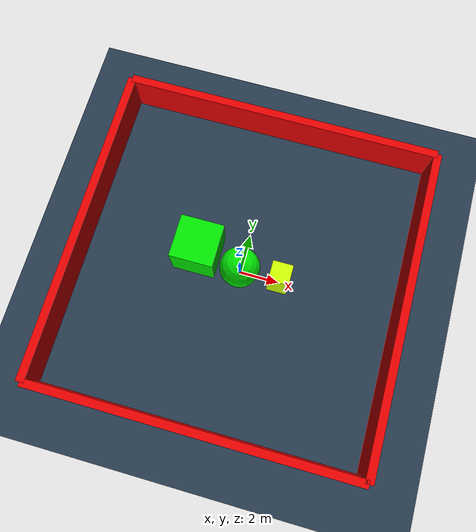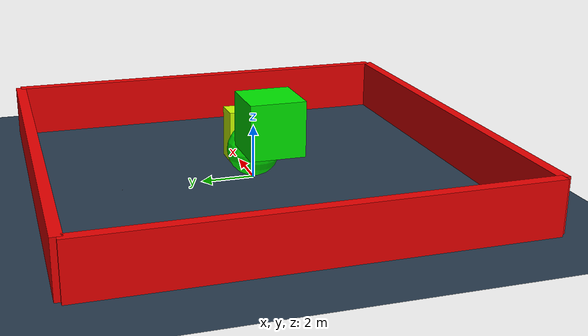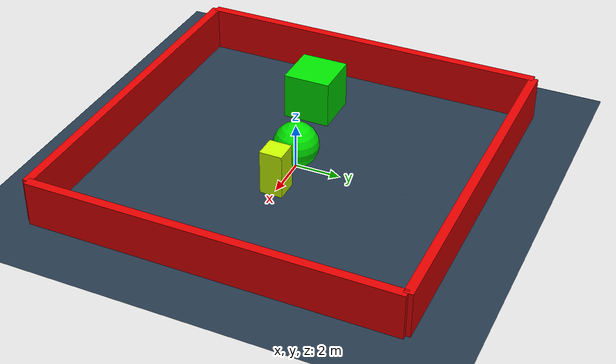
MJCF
<mujoco model="testing_model">
  <include file="Empty_scene.xml"/> <!-- so we can use the ready scene !-->

  <!-- define assets!-->
  <asset>
    <material name="white" rgba="1 1 1 1"/> <!--color white, to use it we add material="white" to the element!-->
    <material name="red" rgba=".9 0 0 1"/>
    <material name="green"  rgba="0 0.9 0 1"/>
    <material name="yellow" rgba="0.8 1 0 1"/>
  </asset>

  <option solver="CG" tolerance="1e-6"/>

  <size nconmax="3000" njmax="3000" nstack="5000"/>

  <worldbody>
    <geom type="plane" size="8 8 0.1" material="red" pos="0 0 0.1"/> <!-- the floor we work on !-->

    <body pos="0 5 0">
      <geom type="sphere" size="0.01 0 0"/>
    </body>
    <!--the walls !-->

    <body name="wall" pos="0 8 1">
      <geom type="box" size="8 0.2 1" material="red"/> <!--size = " length width higth"!-->
    </body>
    <body name="wall2" pos="8 0 1">
      <geom type="box" size="0.2 8 1" material="red"/> <!--size = " length width higth"!-->
    </body>

    <body name="wall3" pos="0 -8 1">
      <geom type="box" size="8 0.2 1" material="red"/> <!--size = " length width higth"!-->
    </body>
    <body name="wall4" pos="-8 0 1">
      <geom type="box" size="0.2 8 1" material="red"/> <!--size = " length width higth"!-->
    </body>

    <body name="agent1" pos="-2 0 2.7">
      <joint name="joint_n_1" type="slide"/>
      <geom type="box" size="1 1 1" material="green"/>
    </body>

    <body name="agent2" pos="2 0 1.1">
      <joint name="joint_n_2" type="hinge"/>
      <geom type="box" size="0.5 0.5 1" material="yellow"/>
    </body>

    <body name="agent3" pos="0 0 1.1">
      <joint name="joint_ball" type="ball"/>
      <geom type="sphere" size="1 0 0" material="green"/>
    </body>
  </worldbody>
</mujoco>

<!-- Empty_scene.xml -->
<mujoco model="floor">

    <statistic extent="17" meansize=".05"/> <!-- to zoom in or out change the value of extent,
    the bigger it gets the farther the point view !-->

    <option timestep="0.005" solver="Newton" iterations="30" tolerance="1e-10" jacobian="sparse" cone="pyramidal"/>

    <visual>
        <rgba haze="0.15 0.25 0.35 1"/>
        <quality shadowsize="2048"/>
        <map stiffness="700" shadowscale="0.5" fogstart="10" fogend="15" zfar="40" haze="0.3"/>
    </visual>

    <asset>
        <texture type="skybox" builtin="gradient" rgb1="0.3 0.5 0.7" rgb2="0 0 0" width="512" height="512"/>

        <texture name="texplane" type="2d" builtin="checker" rgb1=".2 .3 .4" rgb2=".1 0.15 0.2" width="512" height="512" mark="cross" markrgb=".8 .8 .8"/>

        <texture name="texhammock" type="2d" builtin="checker" rgb1=".1 .5 .1" rgb2=".5 .1 .1" width="512" height="512" mark="edge" markrgb=".8 .8 .8"/>

        <texture name="texgeom" type="cube" builtin="flat" mark="cross" width="127" height="1278"
            rgb1="0.8 0.6 0.4" rgb2="0.8 0.6 0.4" markrgb="1 1 1"/>

        <material name="matplane" reflectance="0.3" texture="texplane" texrepeat="1 1" texuniform="true"/>
        <material name="mathammock" texture="texhammock"/>

        <material name="matgeom" texture="texgeom" texuniform="true" rgba="0.8 0.6 .4 1"/>
    </asset>

    <worldbody>
        <light directional="true" diffuse=".4 .4 .4" specular="0.1 0.1 0.1" pos="0 0 5.0" dir="0 0 -1" castshadow="false"/>
        <light directional="true" diffuse=".6 .6 .6" specular="0.2 0.2 0.2" pos="0 0 4" dir="0 0 -1"/>

        <geom name="ground" type="plane" size="0 0 0.25" pos="0 0 0" quat="1 0 0 0" material="matplane" condim="1"/>
    </worldbody>
</mujoco>
